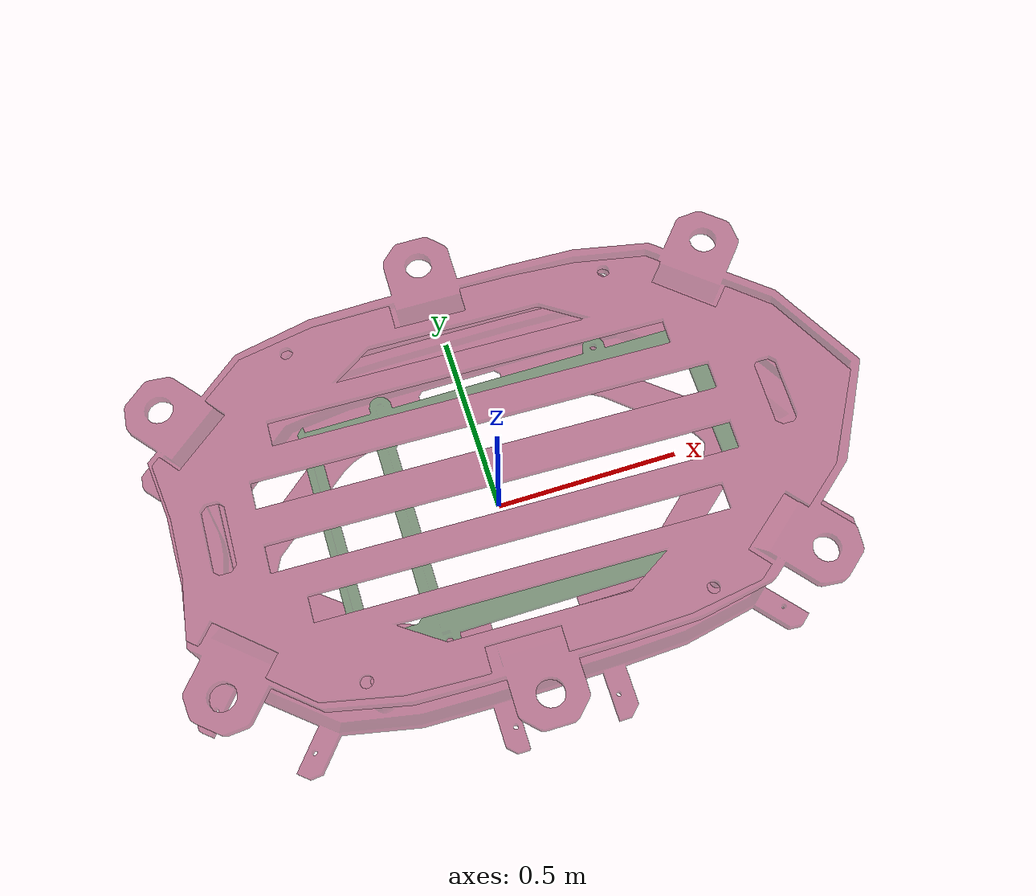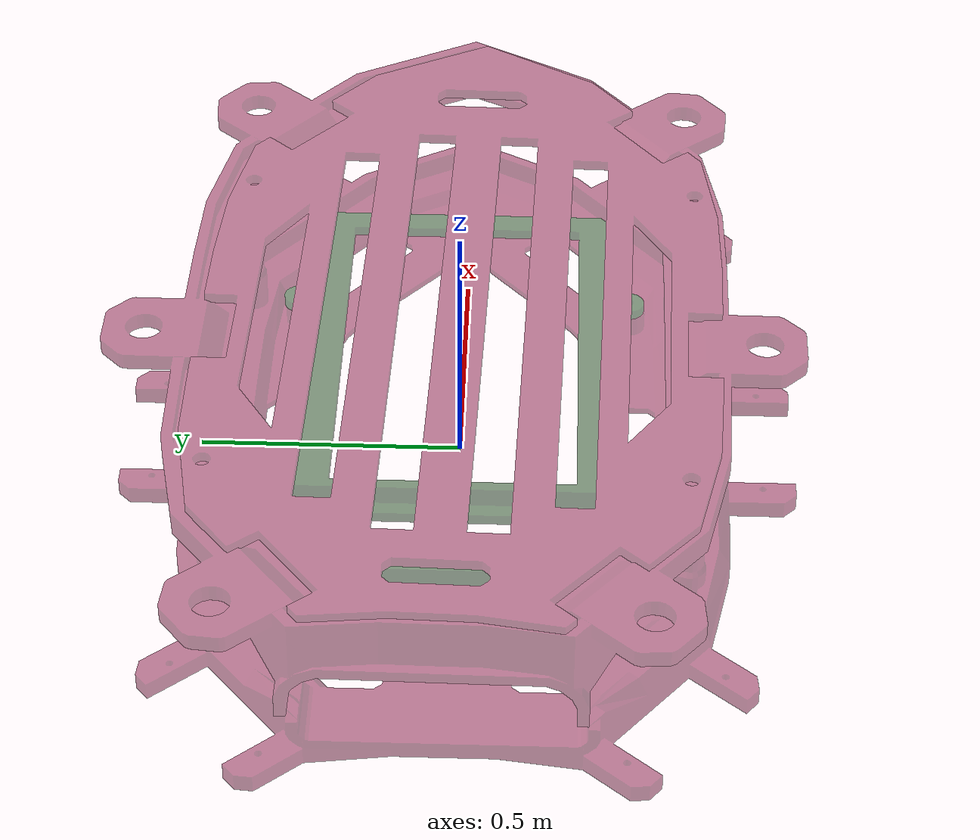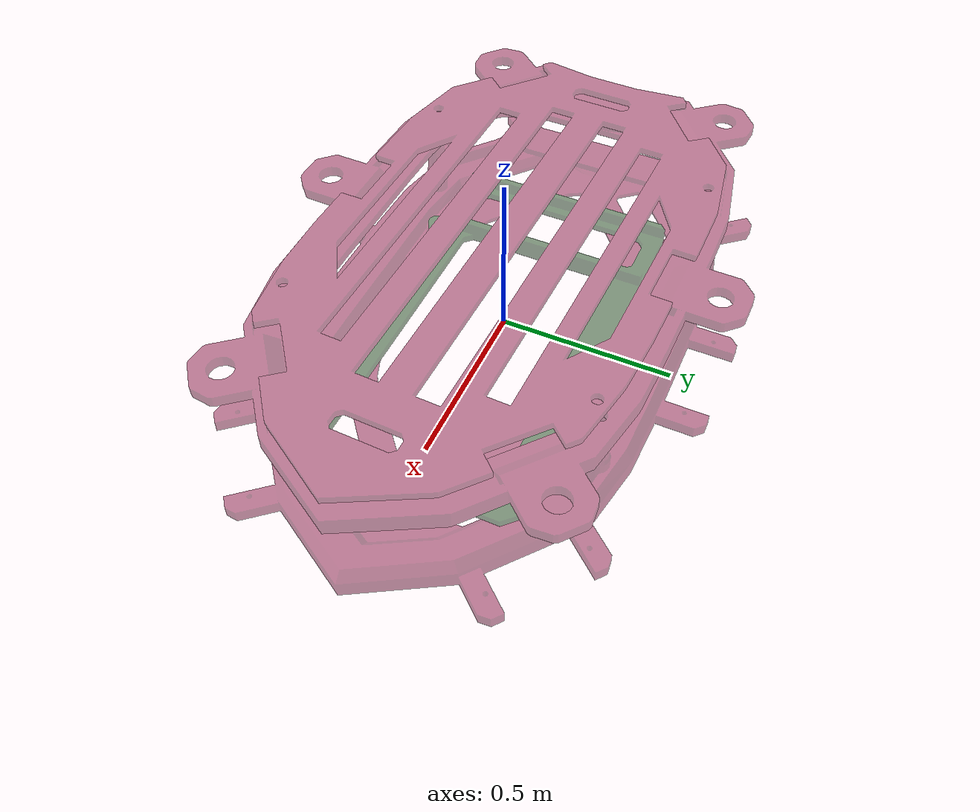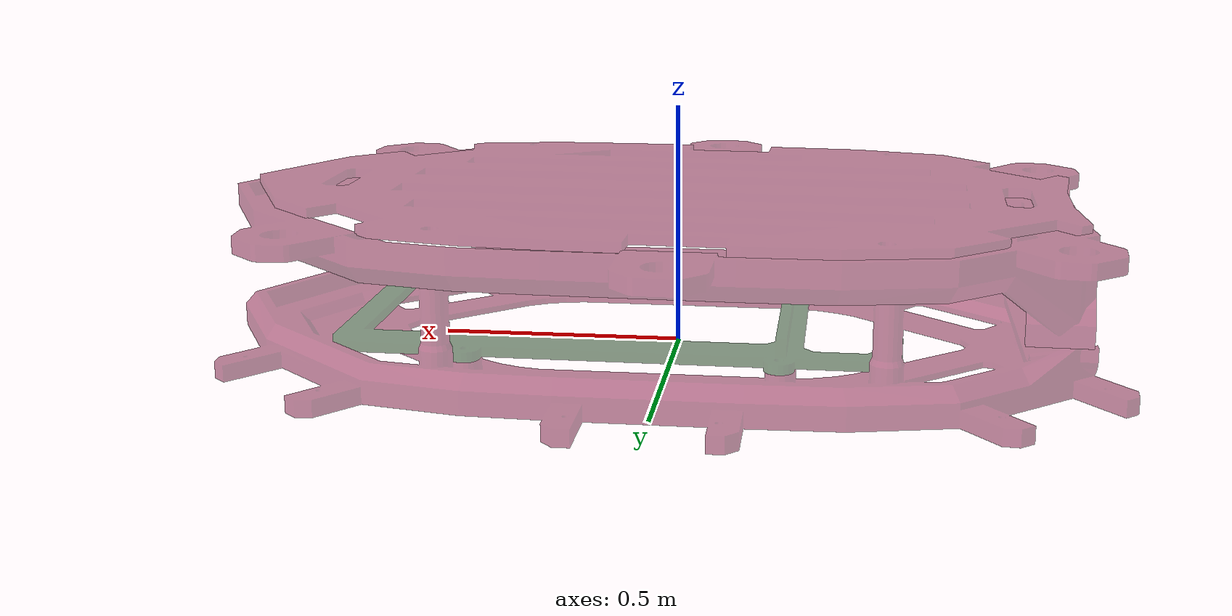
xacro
<?xml version="1.0"?>
<robot xmlns:xacro="http://www.ros.org/wiki/xacro" name="hexapod">

    <material name="body">
        <color rgba="0.5 0 0.2 0.5"/>
    </material>

    <link name="cover_top">
        <visual>
            <geometry>
                <mesh filename="package://hex/models/hexapod_new/meshes/new_meshe/cover_top.stl" scale="0.01 0.01 0.01"/>
            </geometry>
            <origin xyz="-0.02 -0 0"/>
            <material name="body"/>
        </visual>
        <inertial>
            <xacro:box_inertia m="${cover_top_mass}" x="1.6" y="1" z="0.1"/>
        </inertial>
        <collision>
            <geometry>
                <mesh filename="package://hex/models/hexapod_new/meshes/new_meshe/cover_top.stl" scale="0.01 0.01 0.01"/>
            <origin xyz="-0.02 -0 0"/>
            </geometry>
        </collision>
    </link>

    <joint name="body_top_cover_top_joint" type="fixed">
        <parent link="body_top"/>
        <child link="cover_top"/>
        <origin rpy="0.0 0.0 -0.05" xyz="0.0 -0.115 0.31"/>
    </joint>

    <link name="body_top">
        <visual>
        <geometry>
            <mesh filename="package://hex/models/hexapod_new/meshes/new_meshe/body_top.stl" scale="0.01 0.01 0.01"/>
        </geometry>
        <origin xyz="0 -0.42 0"/>
        <material name="body"/>
        </visual>
        <inertial>
            <xacro:box_inertia m="${body_top_mass}" x="1.6" y="1" z="0.1"/>
        </inertial>
        <collision>
        <geometry>
            <mesh filename="package://hex/models/hexapod_new/meshes/new_meshe/body_top.stl" scale="0.01 0.01 0.01"/>
            <origin xyz="0 -0.42 0"/>
        </geometry>
        </collision>
    </link>

    <joint name="body_top_body_bottom_joint" type="fixed">
        <parent link="body_bottom"/>
        <child link="body_top"/>
        <origin rpy="0.0 0.0 0.0" xyz="0.0 0.02 0"/>
    </joint>

    <link name="board_bracket">
        <visual>
        <geometry>
            <mesh filename="package://hex/models/hexapod_new/meshes/new_meshe/board_bracket.stl" scale="0.01 0.01 0.01"/>
        </geometry>
        <origin xyz="0 0 0"/>
        <material name="green">
            <color rgba="0 0.2 0 0.5"/>
        </material>
        </visual>
        <inertial>
            <xacro:box_inertia m="${board_bracket_mass}" x="1.1" y="0.6" z="0.06"/>
        </inertial>
        <collision>
        <geometry>
            <mesh filename="package://hex/models/hexapod_new/meshes/new_meshe/board_bracket.stl" scale="0.01 0.01 0.01"/>
        <origin xyz="0 0 0"/>
        </geometry>
        </collision>
    </link>

    <joint name="base_bottom_bracket_board" type="fixed">
        <parent link="body_bottom"/>
        <child link="board_bracket"/>
       <origin rpy="0.0 0.0 0.0" xyz="0 -0.03 0"/>
    </joint>

   <link name="body_bottom">
    <visual>
      <geometry>
        <mesh filename="package://hex/models/hexapod_new/meshes/new_meshe/body_bottom.stl" scale="0.01 0.01 0.01"/>
      </geometry>
      <origin xyz="0.0 -0.425 0"/>
        <material name="body"/>
    </visual>
    <inertial>
      <xacro:box_inertia m="${body_bottom_mass}" x="1.6" y="1" z="0.1"/>
    </inertial>
    <collision>
      <geometry>
        <mesh filename="package://hex/models/hexapod_new/meshes/new_meshe/body_bottom.stl" scale="0.01 0.01 0.01"/>
        <origin xyz="0.0 -0.425 0"/>
      </geometry>
    </collision>
  </link>

  <link name="base_footprint"/>
    <joint name="base_footprint_base_bottom_joint" type="fixed">
        <parent link="base_footprint"/>
        <child link="body_bottom"/>
        <origin xyz="0.0 0.0 0.0" rpy="0.0 0.0 0.0"/>
    </joint>
</robot>
